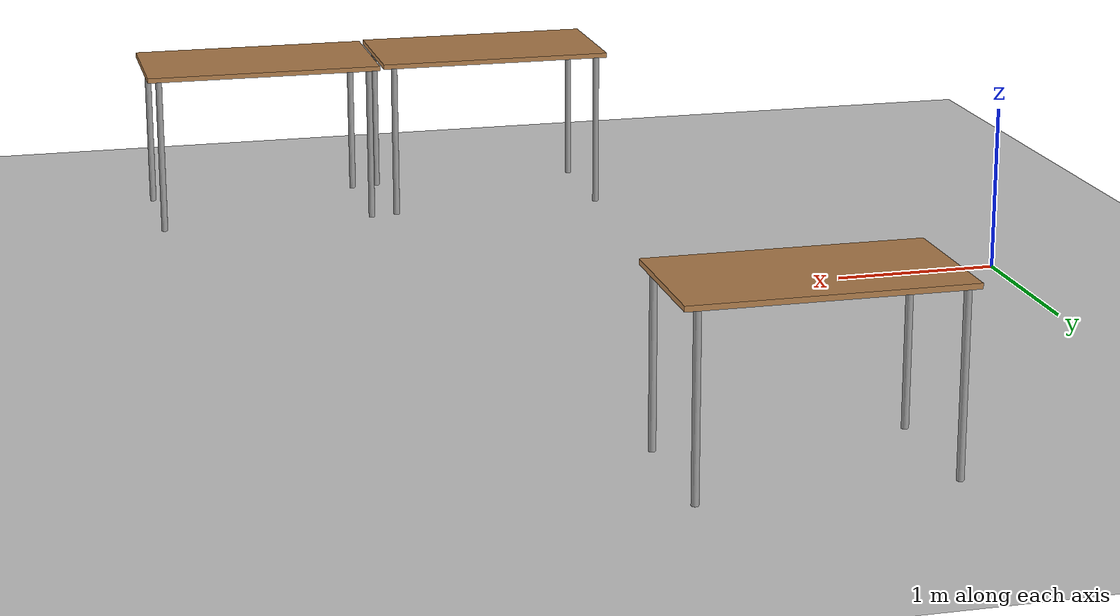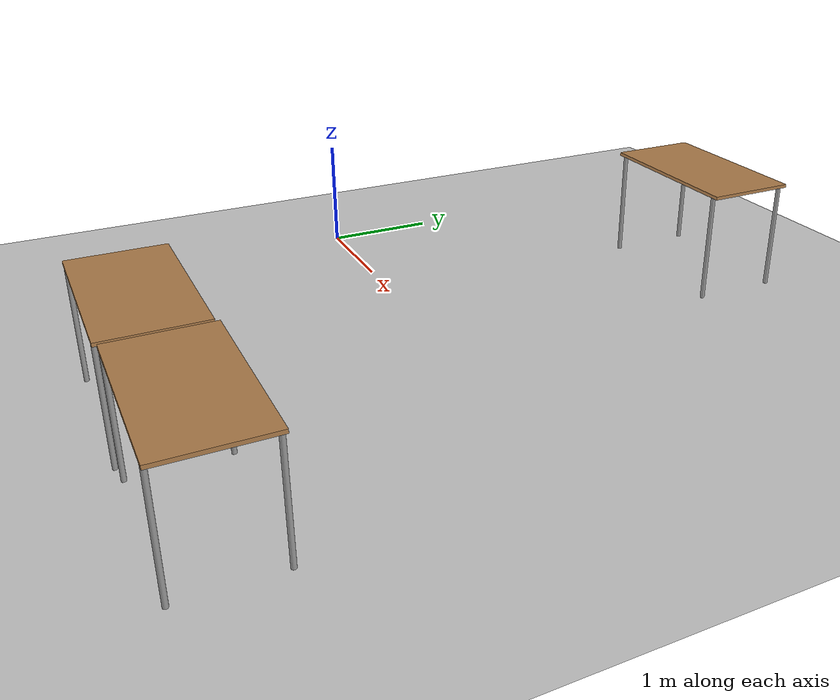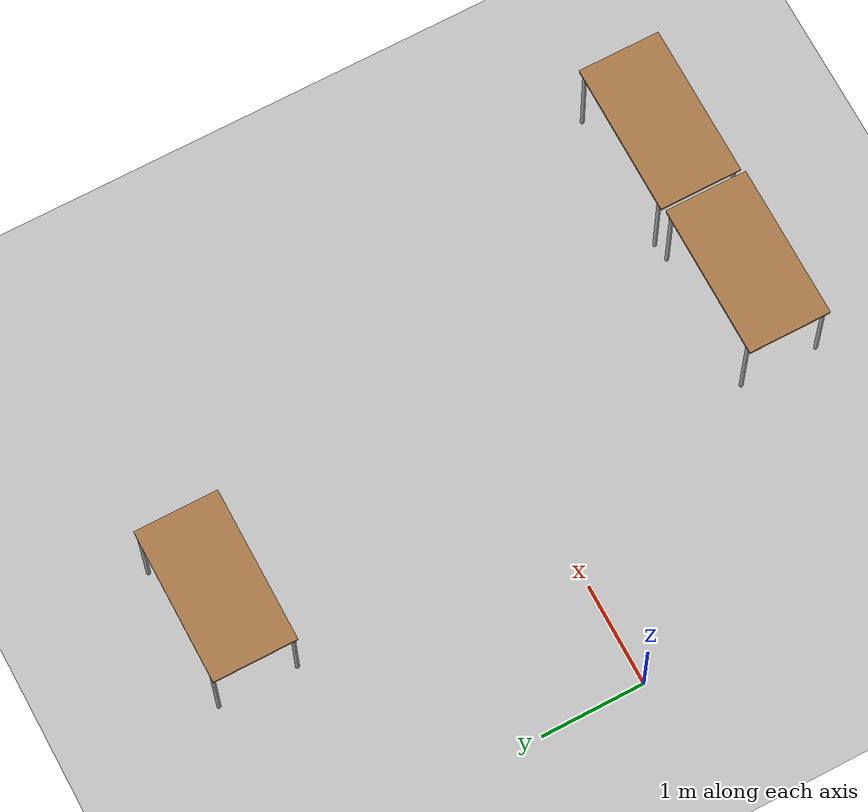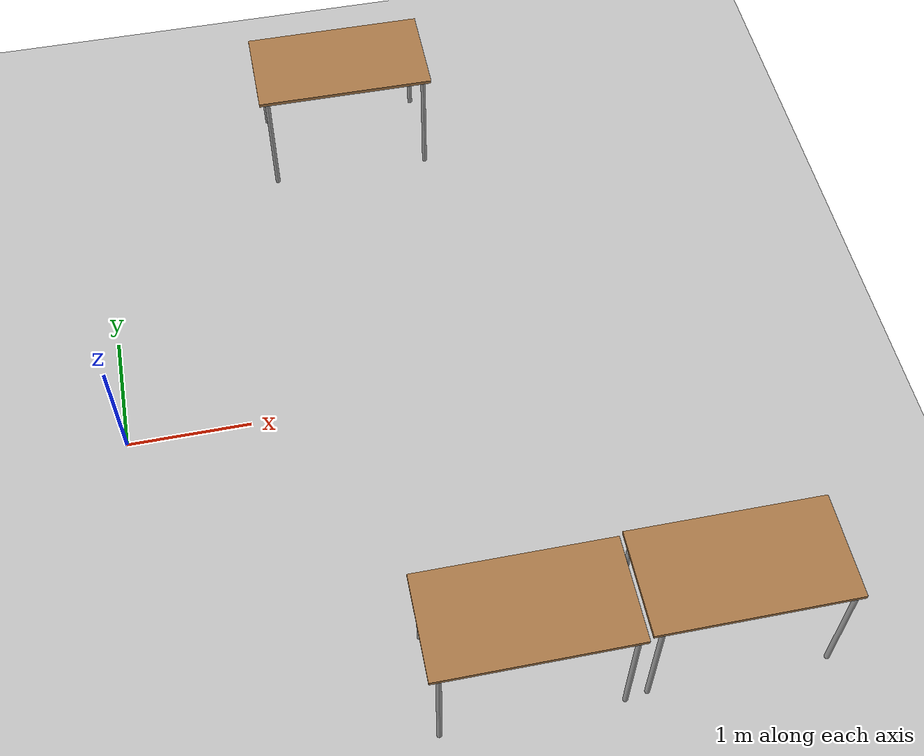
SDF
<sdf version="1.6">
 <world name="default">
  <light name="sun" type="directional">
   <cast_shadows>0</cast_shadows>
   <pose>0 0 10 0 -0 0</pose>
   <diffuse>0.8 0.8 0.8 1</diffuse>
   <specular>0.2 0.2 0.2 1</specular>
   <attenuation>
    <range>1000</range>
    <constant>0.9</constant>
    <linear>0.01</linear>
    <quadratic>0.001</quadratic>
   </attenuation>
   <direction>-0.5 0.1 -0.9</direction>
  </light>
  <model name="ground_plane">
   <static>1</static>
   <link name="link">
    <collision name="collision">
     <geometry><plane><normal>0 0 1</normal><size>100 100</size></plane></geometry>
     <surface><friction><ode><mu>100</mu><mu2>50</mu2></ode></friction></surface>
    </collision>
    <visual name="visual">
     <cast_shadows>0</cast_shadows>
     <geometry><plane><normal>0 0 1</normal><size>100 100</size></plane></geometry>
     <material>
      <script><uri>file://media/materials/scripts/gazebo.material</uri><name>Gazebo/Grey</name></script>
     </material>
    </visual>
   </link>
  </model>
  <physics name="default_physics" default="0" type="ode">
   <real_time_update_rate>1000</real_time_update_rate>
   <max_step_size>0.001</max_step_size>
   <real_time_factor>1</real_time_factor>
   <ode>
    <solver>
     <type>quick</type>
     <iters>150</iters>
     <precon_iters>0</precon_iters>
     <sor>1.4</sor>
     <use_dynamic_moi_rescaling>1</use_dynamic_moi_rescaling>
    </solver>
    <constraints>
     <cfm>1e-05</cfm>
     <erp>0.2</erp>
     <contact_max_correcting_vel>2000</contact_max_correcting_vel>
     <contact_surface_layer>0.01</contact_surface_layer>
    </constraints>
   </ode>
  </physics>
  <gravity>0 0 -9.8</gravity>
  <magnetic_field>6e-06 2.3e-05 -4.2e-05</magnetic_field>
  <atmosphere type="adiabatic"/>
  <scene><ambient>0.4 0.4 0.4 1</ambient><background>0.7 0.7 0.7 1</background><shadows>0</shadows></scene>
  <spherical_coordinates>
   <surface_model>EARTH_WGS84</surface_model>
   <latitude_deg>0</latitude_deg>
   <longitude_deg>0</longitude_deg>
   <elevation>0</elevation>
   <heading_deg>0</heading_deg>
  </spherical_coordinates>
  <model name="table">
   <static>1</static>
   <link name="link">
    <collision name="surface">
     <pose>0 0 1 0 -0 0</pose>
     <geometry><box><size>1.5 0.8 0.03</size></box></geometry>
     <surface><friction><ode><mu>0.6</mu><mu2>0.6</mu2></ode></friction></surface>
    </collision>
    <visual name="visual1">
     <pose>0 0 1 0 -0 0</pose>
     <geometry><box><size>1.5 0.8 0.03</size></box></geometry>
     <material>
      <script><uri>file://media/materials/scripts/gazebo.material</uri><name>Gazebo/Wood</name></script>
     </material>
    </visual>
    <collision name="front_left_leg">
     <pose>0.68 0.38 0.5 0 -0 0</pose>
     <geometry><cylinder><radius>0.02</radius><length>1</length></cylinder></geometry>
    </collision>
    <visual name="front_left_leg">
     <pose>0.68 0.38 0.5 0 -0 0</pose>
     <geometry><cylinder><radius>0.02</radius><length>1</length></cylinder></geometry>
     <material>
      <script><uri>file://media/materials/scripts/gazebo.material</uri><name>Gazebo/Grey</name></script>
     </material>
    </visual>
    <collision name="front_right_leg">
     <pose>0.68 -0.38 0.5 0 -0 0</pose>
     <geometry><cylinder><radius>0.02</radius><length>1</length></cylinder></geometry>
    </collision>
    <visual name="front_right_leg">
     <pose>0.68 -0.38 0.5 0 -0 0</pose>
     <geometry><cylinder><radius>0.02</radius><length>1</length></cylinder></geometry>
     <material>
      <script><uri>file://media/materials/scripts/gazebo.material</uri><name>Gazebo/Grey</name></script>
     </material>
    </visual>
    <collision name="back_right_leg">
     <pose>-0.68 -0.38 0.5 0 -0 0</pose>
     <geometry><cylinder><radius>0.02</radius><length>1</length></cylinder></geometry>
    </collision>
    <visual name="back_right_leg">
     <pose>-0.68 -0.38 0.5 0 -0 0</pose>
     <geometry><cylinder><radius>0.02</radius><length>1</length></cylinder></geometry>
     <material>
      <script><uri>file://media/materials/scripts/gazebo.material</uri><name>Gazebo/Grey</name></script>
     </material>
    </visual>
    <collision name="back_left_leg">
     <pose>-0.68 0.38 0.5 0 -0 0</pose>
     <geometry><cylinder><radius>0.02</radius><length>1</length></cylinder></geometry>
    </collision>
    <visual name="back_left_leg">
     <pose>-0.68 0.38 0.5 0 -0 0</pose>
     <geometry><cylinder><radius>0.02</radius><length>1</length></cylinder></geometry>
     <material>
      <script><uri>file://media/materials/scripts/gazebo.material</uri><name>Gazebo/Grey</name></script>
     </material>
    </visual>
   </link>
   <pose>4.20952 -2.43539 0 0 -0 0</pose>
  </model>
  <model name="table_clone">
   <static>1</static>
   <link name="link">
    <collision name="surface">
     <pose>0 0 1 0 -0 0</pose>
     <geometry><box><size>1.5 0.8 0.03</size></box></geometry>
     <surface><friction><ode><mu>0.6</mu><mu2>0.6</mu2></ode></friction></surface>
    </collision>
    <visual name="visual1">
     <pose>0 0 1 0 -0 0</pose>
     <geometry><box><size>1.5 0.8 0.03</size></box></geometry>
     <material>
      <script><uri>file://media/materials/scripts/gazebo.material</uri><name>Gazebo/Wood</name></script>
     </material>
    </visual>
    <collision name="front_left_leg">
     <pose>0.68 0.38 0.5 0 -0 0</pose>
     <geometry><cylinder><radius>0.02</radius><length>1</length></cylinder></geometry>
    </collision>
    <visual name="front_left_leg">
     <pose>0.68 0.38 0.5 0 -0 0</pose>
     <geometry><cylinder><radius>0.02</radius><length>1</length></cylinder></geometry>
     <material>
      <script><uri>file://media/materials/scripts/gazebo.material</uri><name>Gazebo/Grey</name></script>
     </material>
    </visual>
    <collision name="front_right_leg">
     <pose>0.68 -0.38 0.5 0 -0 0</pose>
     <geometry><cylinder><radius>0.02</radius><length>1</length></cylinder></geometry>
    </collision>
    <visual name="front_right_leg">
     <pose>0.68 -0.38 0.5 0 -0 0</pose>
     <geometry><cylinder><radius>0.02</radius><length>1</length></cylinder></geometry>
     <material>
      <script><uri>file://media/materials/scripts/gazebo.material</uri><name>Gazebo/Grey</name></script>
     </material>
    </visual>
    <collision name="back_right_leg">
     <pose>-0.68 -0.38 0.5 0 -0 0</pose>
     <geometry><cylinder><radius>0.02</radius><length>1</length></cylinder></geometry>
    </collision>
    <visual name="back_right_leg">
     <pose>-0.68 -0.38 0.5 0 -0 0</pose>
     <geometry><cylinder><radius>0.02</radius><length>1</length></cylinder></geometry>
     <material>
      <script><uri>file://media/materials/scripts/gazebo.material</uri><name>Gazebo/Grey</name></script>
     </material>
    </visual>
    <collision name="back_left_leg">
     <pose>-0.68 0.38 0.5 0 -0 0</pose>
     <geometry><cylinder><radius>0.02</radius><length>1</length></cylinder></geometry>
    </collision>
    <visual name="back_left_leg">
     <pose>-0.68 0.38 0.5 0 -0 0</pose>
     <geometry><cylinder><radius>0.02</radius><length>1</length></cylinder></geometry>
     <material>
      <script><uri>file://media/materials/scripts/gazebo.material</uri><name>Gazebo/Grey</name></script>
     </material>
    </visual>
   </link>
   <pose>2.67783 -2.46492 0 0 -0 0</pose>
  </model>
  <model name="table_clone_0">
   <static>1</static>
   <link name="link">
    <collision name="surface">
     <pose>0 0 1 0 -0 0</pose>
     <geometry><box><size>1.5 0.8 0.03</size></box></geometry>
     <surface><friction><ode><mu>0.6</mu><mu2>0.6</mu2></ode></friction></surface>
    </collision>
    <visual name="visual1">
     <pose>0 0 1 0 -0 0</pose>
     <geometry><box><size>1.5 0.8 0.03</size></box></geometry>
     <material>
      <script><uri>file://media/materials/scripts/gazebo.material</uri><name>Gazebo/Wood</name></script>
     </material>
    </visual>
    <collision name="front_left_leg">
     <pose>0.68 0.38 0.5 0 -0 0</pose>
     <geometry><cylinder><radius>0.02</radius><length>1</length></cylinder></geometry>
    </collision>
    <visual name="front_left_leg">
     <pose>0.68 0.38 0.5 0 -0 0</pose>
     <geometry><cylinder><radius>0.02</radius><length>1</length></cylinder></geometry>
     <material>
      <script><uri>file://media/materials/scripts/gazebo.material</uri><name>Gazebo/Grey</name></script>
     </material>
    </visual>
    <collision name="front_right_leg">
     <pose>0.68 -0.38 0.5 0 -0 0</pose>
     <geometry><cylinder><radius>0.02</radius><length>1</length></cylinder></geometry>
    </collision>
    <visual name="front_right_leg">
     <pose>0.68 -0.38 0.5 0 -0 0</pose>
     <geometry><cylinder><radius>0.02</radius><length>1</length></cylinder></geometry>
     <material>
      <script><uri>file://media/materials/scripts/gazebo.material</uri><name>Gazebo/Grey</name></script>
     </material>
    </visual>
    <collision name="back_right_leg">
     <pose>-0.68 -0.38 0.5 0 -0 0</pose>
     <geometry><cylinder><radius>0.02</radius><length>1</length></cylinder></geometry>
    </collision>
    <visual name="back_right_leg">
     <pose>-0.68 -0.38 0.5 0 -0 0</pose>
     <geometry><cylinder><radius>0.02</radius><length>1</length></cylinder></geometry>
     <material>
      <script><uri>file://media/materials/scripts/gazebo.material</uri><name>Gazebo/Grey</name></script>
     </material>
    </visual>
    <collision name="back_left_leg">
     <pose>-0.68 0.38 0.5 0 -0 0</pose>
     <geometry><cylinder><radius>0.02</radius><length>1</length></cylinder></geometry>
    </collision>
    <visual name="back_left_leg">
     <pose>-0.68 0.38 0.5 0 -0 0</pose>
     <geometry><cylinder><radius>0.02</radius><length>1</length></cylinder></geometry>
     <material>
      <script><uri>file://media/materials/scripts/gazebo.material</uri><name>Gazebo/Grey</name></script>
     </material>
    </visual>
   </link>
   <pose>2.22954 2.94435 0 0 -0 0</pose>
  </model>
 </world>
</sdf>
